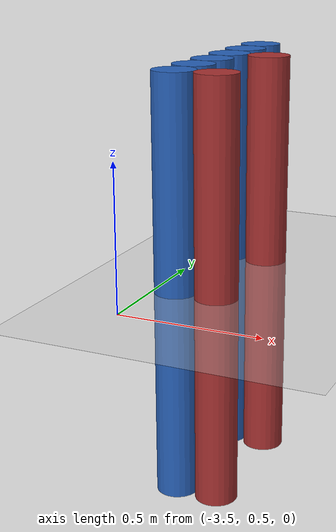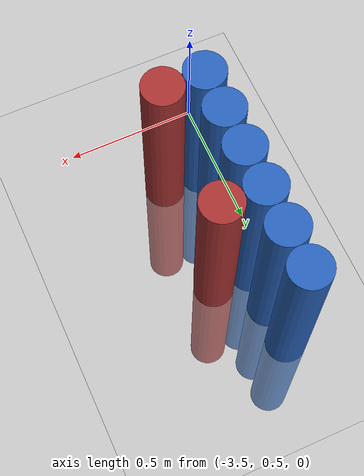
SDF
<sdf version="1.6">
 <world name="default">
  <model name="ground_plane">
   <static>1</static>
   <link name="link">
    <collision name="collision">
     <geometry><plane><normal>0 0 1</normal><size>100 100</size></plane></geometry>
     <surface><friction><ode><mu>100</mu><mu2>50</mu2></ode></friction></surface>
    </collision>
    <visual name="visual">
     <cast_shadows>0</cast_shadows>
     <geometry><plane><normal>0 0 1</normal><size>100 100</size></plane></geometry>
     <material>
      <script><uri>file://media/materials/scripts/gazebo.material</uri><name>Gazebo/Grey</name></script>
     </material>
    </visual>
   </link>
  </model>
  <model name="unit_cylinder_127">
   <static>1</static>
   <pose>-3.425000 0.925000 0.000000 0.000000 0.000000 0.000000</pose>
   <link name="link">
    <inertial>
     <mass>1</mass>
     <inertia><ixx>0.145833</ixx><ixy>0</ixy><ixz>0</ixz><iyy>0.145833</iyy><iyz>0</iyz><izz>0.125</izz></inertia>
    </inertial>
    <collision name="collision">
     <geometry><cylinder><radius>0.075000</radius><length>1.5</length></cylinder></geometry>
    </collision>
    <visual name="visual">
     <geometry><cylinder><radius>0.075000</radius><length>1.5</length></cylinder></geometry>
     <material>
      <ambient>0.152000 0.379000 0.720000 1</ambient>
      <diffuse>0.152000 0.379000 0.720000 1</diffuse>
     </material>
     <material>
      <script><name>Gazebo/Grey</name><uri>file://media/materials/scripts/gazebo.material</uri></script>
     </material>
    </visual>
   </link>
  </model>
  <model name="unit_cylinder_129">
   <static>1</static>
   <pose>-3.425000 1.075000 0.000000 0.000000 0.000000 0.000000</pose>
   <link name="link">
    <inertial>
     <mass>1</mass>
     <inertia><ixx>0.145833</ixx><ixy>0</ixy><ixz>0</ixz><iyy>0.145833</iyy><iyz>0</iyz><izz>0.125</izz></inertia>
    </inertial>
    <collision name="collision">
     <geometry><cylinder><radius>0.075000</radius><length>1.5</length></cylinder></geometry>
    </collision>
    <visual name="visual">
     <geometry><cylinder><radius>0.075000</radius><length>1.5</length></cylinder></geometry>
     <material>
      <ambient>0.152000 0.379000 0.720000 1</ambient>
      <diffuse>0.152000 0.379000 0.720000 1</diffuse>
     </material>
     <material>
      <script><name>Gazebo/Grey</name><uri>file://media/materials/scripts/gazebo.material</uri></script>
     </material>
    </visual>
   </link>
  </model>
  <model name="unit_cylinder_131">
   <static>1</static>
   <pose>-3.425000 1.225000 0.000000 0.000000 0.000000 0.000000</pose>
   <link name="link">
    <inertial>
     <mass>1</mass>
     <inertia><ixx>0.145833</ixx><ixy>0</ixy><ixz>0</ixz><iyy>0.145833</iyy><iyz>0</iyz><izz>0.125</izz></inertia>
    </inertial>
    <collision name="collision">
     <geometry><cylinder><radius>0.075000</radius><length>1.5</length></cylinder></geometry>
    </collision>
    <visual name="visual">
     <geometry><cylinder><radius>0.075000</radius><length>1.5</length></cylinder></geometry>
     <material>
      <ambient>0.152000 0.379000 0.720000 1</ambient>
      <diffuse>0.152000 0.379000 0.720000 1</diffuse>
     </material>
     <material>
      <script><name>Gazebo/Grey</name><uri>file://media/materials/scripts/gazebo.material</uri></script>
     </material>
    </visual>
   </link>
  </model>
  <model name="unit_cylinder_133">
   <static>1</static>
   <pose>-3.425000 1.375000 0.000000 0.000000 0.000000 0.000000</pose>
   <link name="link">
    <inertial>
     <mass>1</mass>
     <inertia><ixx>0.145833</ixx><ixy>0</ixy><ixz>0</ixz><iyy>0.145833</iyy><iyz>0</iyz><izz>0.125</izz></inertia>
    </inertial>
    <collision name="collision">
     <geometry><cylinder><radius>0.075000</radius><length>1.5</length></cylinder></geometry>
    </collision>
    <visual name="visual">
     <geometry><cylinder><radius>0.075000</radius><length>1.5</length></cylinder></geometry>
     <material>
      <ambient>0.152000 0.379000 0.720000 1</ambient>
      <diffuse>0.152000 0.379000 0.720000 1</diffuse>
     </material>
     <material>
      <script><name>Gazebo/Grey</name><uri>file://media/materials/scripts/gazebo.material</uri></script>
     </material>
    </visual>
   </link>
  </model>
  <model name="unit_cylinder_135">
   <static>1</static>
   <pose>-3.425000 1.525000 0.000000 0.000000 0.000000 0.000000</pose>
   <link name="link">
    <inertial>
     <mass>1</mass>
     <inertia><ixx>0.145833</ixx><ixy>0</ixy><ixz>0</ixz><iyy>0.145833</iyy><iyz>0</iyz><izz>0.125</izz></inertia>
    </inertial>
    <collision name="collision">
     <geometry><cylinder><radius>0.075000</radius><length>1.5</length></cylinder></geometry>
    </collision>
    <visual name="visual">
     <geometry><cylinder><radius>0.075000</radius><length>1.5</length></cylinder></geometry>
     <material>
      <ambient>0.152000 0.379000 0.720000 1</ambient>
      <diffuse>0.152000 0.379000 0.720000 1</diffuse>
     </material>
     <material>
      <script><name>Gazebo/Grey</name><uri>file://media/materials/scripts/gazebo.material</uri></script>
     </material>
    </visual>
   </link>
  </model>
  <model name="unit_cylinder_226">
   <static>1</static>
   <pose>-3.425000 0.775000 0.000000 0.000000 0.000000 0.000000</pose>
   <link name="link">
    <inertial>
     <mass>1</mass>
     <inertia><ixx>0.145833</ixx><ixy>0</ixy><ixz>0</ixz><iyy>0.145833</iyy><iyz>0</iyz><izz>0.125</izz></inertia>
    </inertial>
    <collision name="collision">
     <geometry><cylinder><radius>0.075000</radius><length>1.5</length></cylinder></geometry>
    </collision>
    <visual name="visual">
     <geometry><cylinder><radius>0.075000</radius><length>1.5</length></cylinder></geometry>
     <material>
      <ambient>0.152000 0.379000 0.720000 1</ambient>
      <diffuse>0.152000 0.379000 0.720000 1</diffuse>
     </material>
     <material>
      <script><name>Gazebo/Grey</name><uri>file://media/materials/scripts/gazebo.material</uri></script>
     </material>
    </visual>
   </link>
  </model>
  <model name="unit_cylinder_227">
   <static>1</static>
   <pose>-3.425000 0.925000 0.000000 0.000000 0.000000 0.000000</pose>
   <link name="link">
    <inertial>
     <mass>1</mass>
     <inertia><ixx>0.145833</ixx><ixy>0</ixy><ixz>0</ixz><iyy>0.145833</iyy><iyz>0</iyz><izz>0.125</izz></inertia>
    </inertial>
    <collision name="collision">
     <geometry><cylinder><radius>0.075000</radius><length>1.5</length></cylinder></geometry>
    </collision>
    <visual name="visual">
     <geometry><cylinder><radius>0.075000</radius><length>1.5</length></cylinder></geometry>
     <material>
      <ambient>0.152000 0.379000 0.720000 1</ambient>
      <diffuse>0.152000 0.379000 0.720000 1</diffuse>
     </material>
     <material>
      <script><name>Gazebo/Grey</name><uri>file://media/materials/scripts/gazebo.material</uri></script>
     </material>
    </visual>
   </link>
  </model>
  <model name="unit_cylinder_228">
   <static>1</static>
   <pose>-3.425000 1.075000 0.000000 0.000000 0.000000 0.000000</pose>
   <link name="link">
    <inertial>
     <mass>1</mass>
     <inertia><ixx>0.145833</ixx><ixy>0</ixy><ixz>0</ixz><iyy>0.145833</iyy><iyz>0</iyz><izz>0.125</izz></inertia>
    </inertial>
    <collision name="collision">
     <geometry><cylinder><radius>0.075000</radius><length>1.5</length></cylinder></geometry>
    </collision>
    <visual name="visual">
     <geometry><cylinder><radius>0.075000</radius><length>1.5</length></cylinder></geometry>
     <material>
      <ambient>0.152000 0.379000 0.720000 1</ambient>
      <diffuse>0.152000 0.379000 0.720000 1</diffuse>
     </material>
     <material>
      <script><name>Gazebo/Grey</name><uri>file://media/materials/scripts/gazebo.material</uri></script>
     </material>
    </visual>
   </link>
  </model>
  <model name="unit_cylinder_229">
   <static>1</static>
   <pose>-3.425000 1.225000 0.000000 0.000000 0.000000 0.000000</pose>
   <link name="link">
    <inertial>
     <mass>1</mass>
     <inertia><ixx>0.145833</ixx><ixy>0</ixy><ixz>0</ixz><iyy>0.145833</iyy><iyz>0</iyz><izz>0.125</izz></inertia>
    </inertial>
    <collision name="collision">
     <geometry><cylinder><radius>0.075000</radius><length>1.5</length></cylinder></geometry>
    </collision>
    <visual name="visual">
     <geometry><cylinder><radius>0.075000</radius><length>1.5</length></cylinder></geometry>
     <material>
      <ambient>0.152000 0.379000 0.720000 1</ambient>
      <diffuse>0.152000 0.379000 0.720000 1</diffuse>
     </material>
     <material>
      <script><name>Gazebo/Grey</name><uri>file://media/materials/scripts/gazebo.material</uri></script>
     </material>
    </visual>
   </link>
  </model>
  <model name="unit_cylinder_230">
   <static>1</static>
   <pose>-3.425000 1.375000 0.000000 0.000000 0.000000 0.000000</pose>
   <link name="link">
    <inertial>
     <mass>1</mass>
     <inertia><ixx>0.145833</ixx><ixy>0</ixy><ixz>0</ixz><iyy>0.145833</iyy><iyz>0</iyz><izz>0.125</izz></inertia>
    </inertial>
    <collision name="collision">
     <geometry><cylinder><radius>0.075000</radius><length>1.5</length></cylinder></geometry>
    </collision>
    <visual name="visual">
     <geometry><cylinder><radius>0.075000</radius><length>1.5</length></cylinder></geometry>
     <material>
      <ambient>0.152000 0.379000 0.720000 1</ambient>
      <diffuse>0.152000 0.379000 0.720000 1</diffuse>
     </material>
     <material>
      <script><name>Gazebo/Grey</name><uri>file://media/materials/scripts/gazebo.material</uri></script>
     </material>
    </visual>
   </link>
  </model>
  <model name="unit_cylinder_231">
   <static>1</static>
   <pose>-3.425000 1.525000 0.000000 0.000000 0.000000 0.000000</pose>
   <link name="link">
    <inertial>
     <mass>1</mass>
     <inertia><ixx>0.145833</ixx><ixy>0</ixy><ixz>0</ixz><iyy>0.145833</iyy><iyz>0</iyz><izz>0.125</izz></inertia>
    </inertial>
    <collision name="collision">
     <geometry><cylinder><radius>0.075000</radius><length>1.5</length></cylinder></geometry>
    </collision>
    <visual name="visual">
     <geometry><cylinder><radius>0.075000</radius><length>1.5</length></cylinder></geometry>
     <material>
      <ambient>0.152000 0.379000 0.720000 1</ambient>
      <diffuse>0.152000 0.379000 0.720000 1</diffuse>
     </material>
     <material>
      <script><name>Gazebo/Grey</name><uri>file://media/materials/scripts/gazebo.material</uri></script>
     </material>
    </visual>
   </link>
  </model>
  <model name="unit_cylinder_262">
   <static>1</static>
   <pose>-3.275000 0.775000 0.000000 0.000000 0.000000 0.000000</pose>
   <link name="link">
    <inertial>
     <mass>1</mass>
     <inertia><ixx>0.145833</ixx><ixy>0</ixy><ixz>0</ixz><iyy>0.145833</iyy><iyz>0</iyz><izz>0.125</izz></inertia>
    </inertial>
    <collision name="collision">
     <geometry><cylinder><radius>0.075000</radius><length>1.5</length></cylinder></geometry>
    </collision>
    <visual name="visual">
     <geometry><cylinder><radius>0.075000</radius><length>1.5</length></cylinder></geometry>
     <material>
      <ambient>0.648000 0.192000 0.192000 1</ambient>
      <diffuse>0.648000 0.192000 0.192000 1</diffuse>
     </material>
     <material>
      <script><name>Gazebo/Grey</name><uri>file://media/materials/scripts/gazebo.material</uri></script>
     </material>
    </visual>
   </link>
  </model>
  <model name="unit_cylinder_263">
   <static>1</static>
   <pose>-3.275000 1.225000 0.000000 0.000000 0.000000 0.000000</pose>
   <link name="link">
    <inertial>
     <mass>1</mass>
     <inertia><ixx>0.145833</ixx><ixy>0</ixy><ixz>0</ixz><iyy>0.145833</iyy><iyz>0</iyz><izz>0.125</izz></inertia>
    </inertial>
    <collision name="collision">
     <geometry><cylinder><radius>0.075000</radius><length>1.5</length></cylinder></geometry>
    </collision>
    <visual name="visual">
     <geometry><cylinder><radius>0.075000</radius><length>1.5</length></cylinder></geometry>
     <material>
      <ambient>0.648000 0.192000 0.192000 1</ambient>
      <diffuse>0.648000 0.192000 0.192000 1</diffuse>
     </material>
     <material>
      <script><name>Gazebo/Grey</name><uri>file://media/materials/scripts/gazebo.material</uri></script>
     </material>
    </visual>
   </link>
  </model>
 </world>
</sdf>
